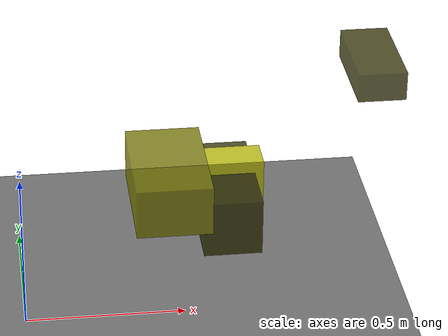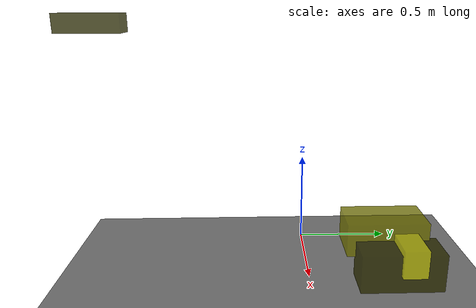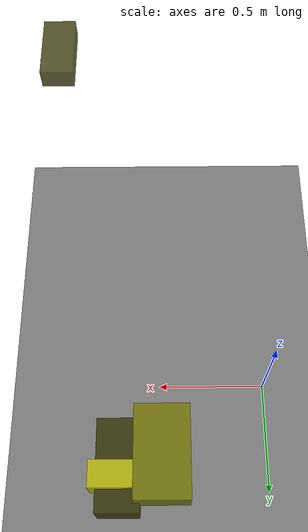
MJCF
<?xml version="1.0"?>
<mujoco model="obstacle_scene">
  <compiler angle="radian" coordinate="local"/>
  <option timestep="0.001" gravity="0 0 -9.81"/>

  <asset>
    <material name="obstacle_mat" rgba="0.8 0.8 0.0 0.8"/>
    <material name="ground_mat" rgba="0.5 0.5 0.5 1"/>
  </asset>

  <worldbody>
    <!-- Ground plane -->
    <geom name="ground" type="plane" size="3 3 0.1" material="ground_mat"/>

    <!-- Obstacles -->
    <body name="obstacle_0" pos="0.854124 -0.886853 1.291793">
      <geom name="obs_0" type="box" size="0.058194 0.123820 0.035687" rgba="0.2 0.2 0.0 0.8"/>
    </body>
    <body name="obstacle_1" pos="0.487532 0.374736 0.252763">
      <geom name="obs_1" type="box" size="0.122151 0.201812 0.083200" rgba="0.5 0.5 0.0 0.8"/>
    </body>
    <body name="obstacle_2" pos="0.699434 0.460642 0.218792">
      <geom name="obs_2" type="box" size="0.104510 0.058411 0.069387" rgba="0.8 0.8 0.0 0.8"/>
    </body>
    <body name="obstacle_3" pos="0.680257 0.415682 0.156085">
      <geom name="obs_3" type="box" size="0.094288 0.200686 0.094805" rgba="0.2 0.2 0.0 0.8"/>
    </body>
  </worldbody>
</mujoco>
